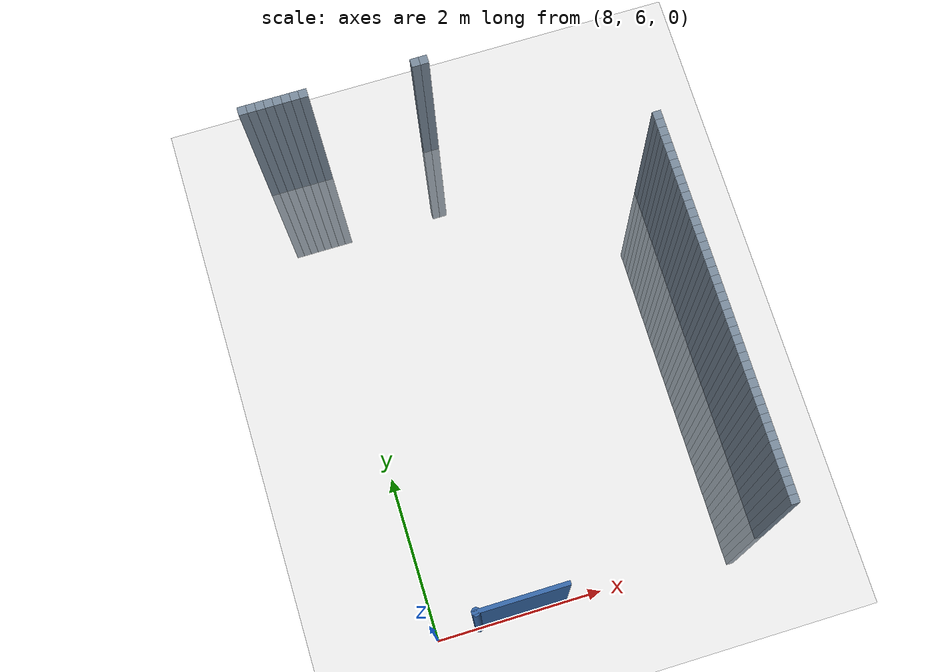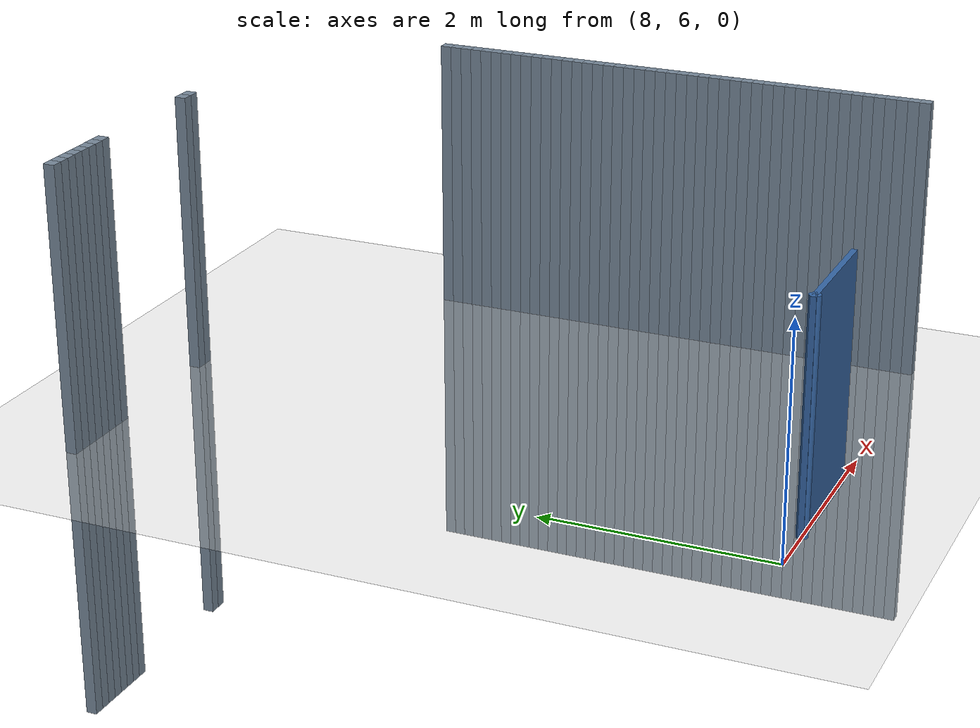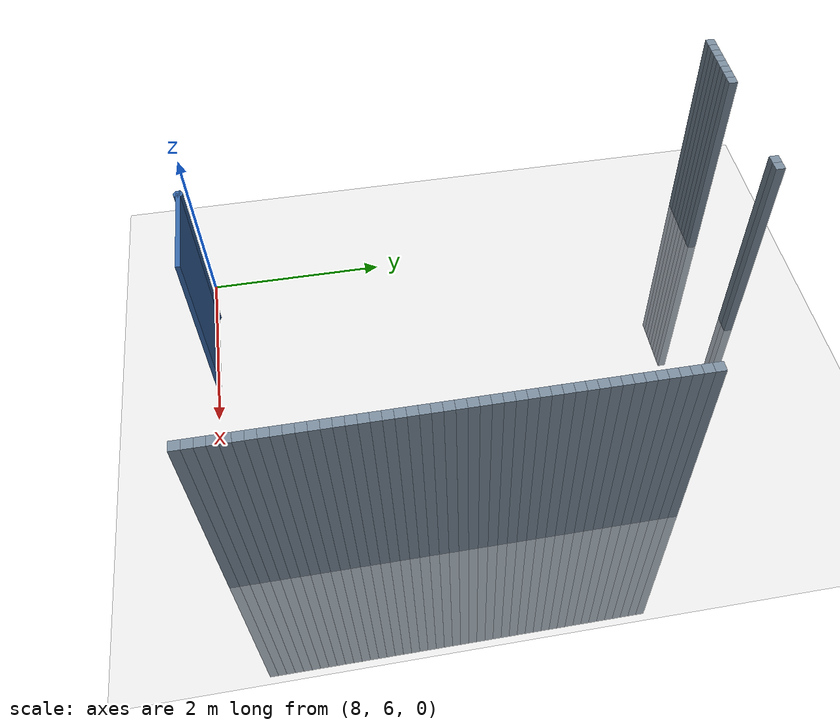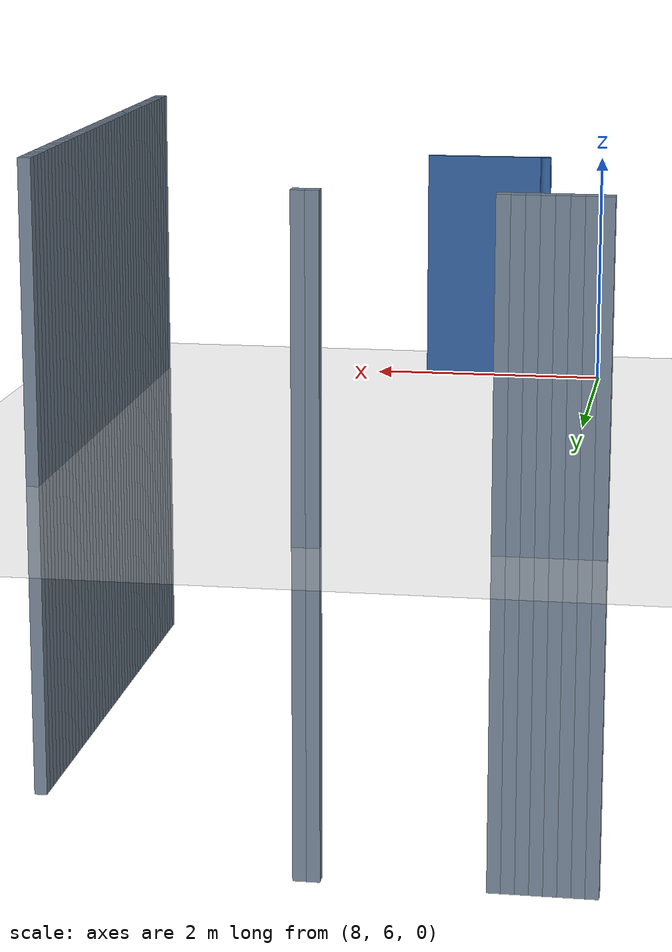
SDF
<sdf version="1.6">
 <world name="default">
  <model name="ground_plane">
   <static>1</static>
   <link name="link">
    <collision name="collision">
     <geometry><plane><normal>0 0 1</normal><size>100 100</size></plane></geometry>
     <surface><friction><ode><mu>100</mu><mu2>50</mu2></ode></friction></surface>
    </collision>
    <visual name="visual">
     <cast_shadows>0</cast_shadows>
     <geometry><plane><normal>0 0 1</normal><size>100 100</size></plane></geometry>
     <material>
      <script><uri>file://media/materials/scripts/gazebo.material</uri><name>Gazebo/Grey</name></script>
     </material>
    </visual>
   </link>
  </model>
  <model name="unit_cylinder_424">
   <static>1</static>
   <pose>7.6 12 0 0 -0 0</pose>
   <link name="link">
    <inertial>
     <mass>1</mass>
     <inertia><ixx>0.145833</ixx><ixy>0</ixy><ixz>0</ixz><iyy>0.145833</iyy><iyz>0</iyz><izz>0.125</izz></inertia>
    </inertial>
    <collision name="collision"><geometry><box><size>0.1 0.1 5</size></box></geometry></collision>
    <visual name="visual">
     <geometry><box><size>0.1 0.1 5</size></box></geometry>
     <material><ambient>0.466667 0.533333 0.6 1</ambient><diffuse>0.466667 0.533333 0.6 1</diffuse></material>
     <material>
      <script><name>Gazebo/Grey</name><uri>file://media/materials/scripts/gazebo.material</uri></script>
     </material>
    </visual>
   </link>
  </model>
  <model name="unit_cylinder_428">
   <static>1</static>
   <pose>7.7 12 0 0 -0 0</pose>
   <link name="link">
    <inertial>
     <mass>1</mass>
     <inertia><ixx>0.145833</ixx><ixy>0</ixy><ixz>0</ixz><iyy>0.145833</iyy><iyz>0</iyz><izz>0.125</izz></inertia>
    </inertial>
    <collision name="collision"><geometry><box><size>0.1 0.1 5</size></box></geometry></collision>
    <visual name="visual">
     <geometry><box><size>0.1 0.1 5</size></box></geometry>
     <material><ambient>0.466667 0.533333 0.6 1</ambient><diffuse>0.466667 0.533333 0.6 1</diffuse></material>
     <material>
      <script><name>Gazebo/Grey</name><uri>file://media/materials/scripts/gazebo.material</uri></script>
     </material>
    </visual>
   </link>
  </model>
  <model name="unit_cylinder_432">
   <static>1</static>
   <pose>7.8 12 0 0 -0 0</pose>
   <link name="link">
    <inertial>
     <mass>1</mass>
     <inertia><ixx>0.145833</ixx><ixy>0</ixy><ixz>0</ixz><iyy>0.145833</iyy><iyz>0</iyz><izz>0.125</izz></inertia>
    </inertial>
    <collision name="collision"><geometry><box><size>0.1 0.1 5</size></box></geometry></collision>
    <visual name="visual">
     <geometry><box><size>0.1 0.1 5</size></box></geometry>
     <material><ambient>0.466667 0.533333 0.6 1</ambient><diffuse>0.466667 0.533333 0.6 1</diffuse></material>
     <material>
      <script><name>Gazebo/Grey</name><uri>file://media/materials/scripts/gazebo.material</uri></script>
     </material>
    </visual>
   </link>
  </model>
  <model name="unit_cylinder_436">
   <static>1</static>
   <pose>7.9 12 0 0 -0 0</pose>
   <link name="link">
    <inertial>
     <mass>1</mass>
     <inertia><ixx>0.145833</ixx><ixy>0</ixy><ixz>0</ixz><iyy>0.145833</iyy><iyz>0</iyz><izz>0.125</izz></inertia>
    </inertial>
    <collision name="collision"><geometry><box><size>0.1 0.1 5</size></box></geometry></collision>
    <visual name="visual">
     <geometry><box><size>0.1 0.1 5</size></box></geometry>
     <material><ambient>0.466667 0.533333 0.6 1</ambient><diffuse>0.466667 0.533333 0.6 1</diffuse></material>
     <material>
      <script><name>Gazebo/Grey</name><uri>file://media/materials/scripts/gazebo.material</uri></script>
     </material>
    </visual>
   </link>
  </model>
  <model name="unit_cylinder_440">
   <static>1</static>
   <pose>8 12 0 0 -0 0</pose>
   <link name="link">
    <inertial>
     <mass>1</mass>
     <inertia><ixx>0.145833</ixx><ixy>0</ixy><ixz>0</ixz><iyy>0.145833</iyy><iyz>0</iyz><izz>0.125</izz></inertia>
    </inertial>
    <collision name="collision"><geometry><box><size>0.1 0.1 5</size></box></geometry></collision>
    <visual name="visual">
     <geometry><box><size>0.1 0.1 5</size></box></geometry>
     <material><ambient>0.466667 0.533333 0.6 1</ambient><diffuse>0.466667 0.533333 0.6 1</diffuse></material>
     <material>
      <script><name>Gazebo/Grey</name><uri>file://media/materials/scripts/gazebo.material</uri></script>
     </material>
    </visual>
   </link>
  </model>
  <model name="unit_cylinder_444">
   <static>1</static>
   <pose>8.1 12 0 0 -0 0</pose>
   <link name="link">
    <inertial>
     <mass>1</mass>
     <inertia><ixx>0.145833</ixx><ixy>0</ixy><ixz>0</ixz><iyy>0.145833</iyy><iyz>0</iyz><izz>0.125</izz></inertia>
    </inertial>
    <collision name="collision"><geometry><box><size>0.1 0.1 5</size></box></geometry></collision>
    <visual name="visual">
     <geometry><box><size>0.1 0.1 5</size></box></geometry>
     <material><ambient>0.466667 0.533333 0.6 1</ambient><diffuse>0.466667 0.533333 0.6 1</diffuse></material>
     <material>
      <script><name>Gazebo/Grey</name><uri>file://media/materials/scripts/gazebo.material</uri></script>
     </material>
    </visual>
   </link>
  </model>
  <model name="unit_cylinder_448">
   <static>1</static>
   <pose>8.2 12 0 0 -0 0</pose>
   <link name="link">
    <inertial>
     <mass>1</mass>
     <inertia><ixx>0.145833</ixx><ixy>0</ixy><ixz>0</ixz><iyy>0.145833</iyy><iyz>0</iyz><izz>0.125</izz></inertia>
    </inertial>
    <collision name="collision"><geometry><box><size>0.1 0.1 5</size></box></geometry></collision>
    <visual name="visual">
     <geometry><box><size>0.1 0.1 5</size></box></geometry>
     <material><ambient>0.466667 0.533333 0.6 1</ambient><diffuse>0.466667 0.533333 0.6 1</diffuse></material>
     <material>
      <script><name>Gazebo/Grey</name><uri>file://media/materials/scripts/gazebo.material</uri></script>
     </material>
    </visual>
   </link>
  </model>
  <model name="unit_cylinder_452">
   <static>1</static>
   <pose>8.3 12 0 0 -0 0</pose>
   <link name="link">
    <inertial>
     <mass>1</mass>
     <inertia><ixx>0.145833</ixx><ixy>0</ixy><ixz>0</ixz><iyy>0.145833</iyy><iyz>0</iyz><izz>0.125</izz></inertia>
    </inertial>
    <collision name="collision"><geometry><box><size>0.1 0.1 5</size></box></geometry></collision>
    <visual name="visual">
     <geometry><box><size>0.1 0.1 5</size></box></geometry>
     <material><ambient>0.466667 0.533333 0.6 1</ambient><diffuse>0.466667 0.533333 0.6 1</diffuse></material>
     <material>
      <script><name>Gazebo/Grey</name><uri>file://media/materials/scripts/gazebo.material</uri></script>
     </material>
    </visual>
   </link>
  </model>
  <model name="unit_cylinder_504">
   <static>1</static>
   <pose>9.6 12 0 0 -0 0</pose>
   <link name="link">
    <inertial>
     <mass>1</mass>
     <inertia><ixx>0.145833</ixx><ixy>0</ixy><ixz>0</ixz><iyy>0.145833</iyy><iyz>0</iyz><izz>0.125</izz></inertia>
    </inertial>
    <collision name="collision"><geometry><box><size>0.1 0.1 5</size></box></geometry></collision>
    <visual name="visual">
     <geometry><box><size>0.1 0.1 5</size></box></geometry>
     <material><ambient>0.466667 0.533333 0.6 1</ambient><diffuse>0.466667 0.533333 0.6 1</diffuse></material>
     <material>
      <script><name>Gazebo/Grey</name><uri>file://media/materials/scripts/gazebo.material</uri></script>
     </material>
    </visual>
   </link>
  </model>
  <model name="unit_cylinder_508">
   <static>1</static>
   <pose>9.7 12 0 0 -0 0</pose>
   <link name="link">
    <inertial>
     <mass>1</mass>
     <inertia><ixx>0.145833</ixx><ixy>0</ixy><ixz>0</ixz><iyy>0.145833</iyy><iyz>0</iyz><izz>0.125</izz></inertia>
    </inertial>
    <collision name="collision"><geometry><box><size>0.1 0.1 5</size></box></geometry></collision>
    <visual name="visual">
     <geometry><box><size>0.1 0.1 5</size></box></geometry>
     <material><ambient>0.466667 0.533333 0.6 1</ambient><diffuse>0.466667 0.533333 0.6 1</diffuse></material>
     <material>
      <script><name>Gazebo/Grey</name><uri>file://media/materials/scripts/gazebo.material</uri></script>
     </material>
    </visual>
   </link>
  </model>
  <model name="unit_cylinder_659">
   <static>1</static>
   <pose>12 6.1 0 0 -0 0</pose>
   <link name="link">
    <inertial>
     <mass>1</mass>
     <inertia><ixx>0.145833</ixx><ixy>0</ixy><ixz>0</ixz><iyy>0.145833</iyy><iyz>0</iyz><izz>0.125</izz></inertia>
    </inertial>
    <collision name="collision"><geometry><box><size>0.1 0.1 5</size></box></geometry></collision>
    <visual name="visual">
     <geometry><box><size>0.1 0.1 5</size></box></geometry>
     <material><ambient>0.466667 0.533333 0.6 1</ambient><diffuse>0.466667 0.533333 0.6 1</diffuse></material>
     <material>
      <script><name>Gazebo/Grey</name><uri>file://media/materials/scripts/gazebo.material</uri></script>
     </material>
    </visual>
   </link>
  </model>
  <model name="unit_cylinder_660">
   <static>1</static>
   <pose>12 6.2 0 0 -0 0</pose>
   <link name="link">
    <inertial>
     <mass>1</mass>
     <inertia><ixx>0.145833</ixx><ixy>0</ixy><ixz>0</ixz><iyy>0.145833</iyy><iyz>0</iyz><izz>0.125</izz></inertia>
    </inertial>
    <collision name="collision"><geometry><box><size>0.1 0.1 5</size></box></geometry></collision>
    <visual name="visual">
     <geometry><box><size>0.1 0.1 5</size></box></geometry>
     <material><ambient>0.466667 0.533333 0.6 1</ambient><diffuse>0.466667 0.533333 0.6 1</diffuse></material>
     <material>
      <script><name>Gazebo/Grey</name><uri>file://media/materials/scripts/gazebo.material</uri></script>
     </material>
    </visual>
   </link>
  </model>
  <model name="unit_cylinder_661">
   <static>1</static>
   <pose>12 6.3 0 0 -0 0</pose>
   <link name="link">
    <inertial>
     <mass>1</mass>
     <inertia><ixx>0.145833</ixx><ixy>0</ixy><ixz>0</ixz><iyy>0.145833</iyy><iyz>0</iyz><izz>0.125</izz></inertia>
    </inertial>
    <collision name="collision"><geometry><box><size>0.1 0.1 5</size></box></geometry></collision>
    <visual name="visual">
     <geometry><box><size>0.1 0.1 5</size></box></geometry>
     <material><ambient>0.466667 0.533333 0.6 1</ambient><diffuse>0.466667 0.533333 0.6 1</diffuse></material>
     <material>
      <script><name>Gazebo/Grey</name><uri>file://media/materials/scripts/gazebo.material</uri></script>
     </material>
    </visual>
   </link>
  </model>
  <model name="unit_cylinder_662">
   <static>1</static>
   <pose>12 6.4 0 0 -0 0</pose>
   <link name="link">
    <inertial>
     <mass>1</mass>
     <inertia><ixx>0.145833</ixx><ixy>0</ixy><ixz>0</ixz><iyy>0.145833</iyy><iyz>0</iyz><izz>0.125</izz></inertia>
    </inertial>
    <collision name="collision"><geometry><box><size>0.1 0.1 5</size></box></geometry></collision>
    <visual name="visual">
     <geometry><box><size>0.1 0.1 5</size></box></geometry>
     <material><ambient>0.466667 0.533333 0.6 1</ambient><diffuse>0.466667 0.533333 0.6 1</diffuse></material>
     <material>
      <script><name>Gazebo/Grey</name><uri>file://media/materials/scripts/gazebo.material</uri></script>
     </material>
    </visual>
   </link>
  </model>
  <model name="unit_cylinder_663">
   <static>1</static>
   <pose>12 6.5 0 0 -0 0</pose>
   <link name="link">
    <inertial>
     <mass>1</mass>
     <inertia><ixx>0.145833</ixx><ixy>0</ixy><ixz>0</ixz><iyy>0.145833</iyy><iyz>0</iyz><izz>0.125</izz></inertia>
    </inertial>
    <collision name="collision"><geometry><box><size>0.1 0.1 5</size></box></geometry></collision>
    <visual name="visual">
     <geometry><box><size>0.1 0.1 5</size></box></geometry>
     <material><ambient>0.466667 0.533333 0.6 1</ambient><diffuse>0.466667 0.533333 0.6 1</diffuse></material>
     <material>
      <script><name>Gazebo/Grey</name><uri>file://media/materials/scripts/gazebo.material</uri></script>
     </material>
    </visual>
   </link>
  </model>
  <model name="unit_cylinder_664">
   <static>1</static>
   <pose>12 6.6 0 0 -0 0</pose>
   <link name="link">
    <inertial>
     <mass>1</mass>
     <inertia><ixx>0.145833</ixx><ixy>0</ixy><ixz>0</ixz><iyy>0.145833</iyy><iyz>0</iyz><izz>0.125</izz></inertia>
    </inertial>
    <collision name="collision"><geometry><box><size>0.1 0.1 5</size></box></geometry></collision>
    <visual name="visual">
     <geometry><box><size>0.1 0.1 5</size></box></geometry>
     <material><ambient>0.466667 0.533333 0.6 1</ambient><diffuse>0.466667 0.533333 0.6 1</diffuse></material>
     <material>
      <script><name>Gazebo/Grey</name><uri>file://media/materials/scripts/gazebo.material</uri></script>
     </material>
    </visual>
   </link>
  </model>
  <model name="unit_cylinder_665">
   <static>1</static>
   <pose>12 6.7 0 0 -0 0</pose>
   <link name="link">
    <inertial>
     <mass>1</mass>
     <inertia><ixx>0.145833</ixx><ixy>0</ixy><ixz>0</ixz><iyy>0.145833</iyy><iyz>0</iyz><izz>0.125</izz></inertia>
    </inertial>
    <collision name="collision"><geometry><box><size>0.1 0.1 5</size></box></geometry></collision>
    <visual name="visual">
     <geometry><box><size>0.1 0.1 5</size></box></geometry>
     <material><ambient>0.466667 0.533333 0.6 1</ambient><diffuse>0.466667 0.533333 0.6 1</diffuse></material>
     <material>
      <script><name>Gazebo/Grey</name><uri>file://media/materials/scripts/gazebo.material</uri></script>
     </material>
    </visual>
   </link>
  </model>
  <model name="unit_cylinder_666">
   <static>1</static>
   <pose>12 6.8 0 0 -0 0</pose>
   <link name="link">
    <inertial>
     <mass>1</mass>
     <inertia><ixx>0.145833</ixx><ixy>0</ixy><ixz>0</ixz><iyy>0.145833</iyy><iyz>0</iyz><izz>0.125</izz></inertia>
    </inertial>
    <collision name="collision"><geometry><box><size>0.1 0.1 5</size></box></geometry></collision>
    <visual name="visual">
     <geometry><box><size>0.1 0.1 5</size></box></geometry>
     <material><ambient>0.466667 0.533333 0.6 1</ambient><diffuse>0.466667 0.533333 0.6 1</diffuse></material>
     <material>
      <script><name>Gazebo/Grey</name><uri>file://media/materials/scripts/gazebo.material</uri></script>
     </material>
    </visual>
   </link>
  </model>
  <model name="unit_cylinder_667">
   <static>1</static>
   <pose>12 6.9 0 0 -0 0</pose>
   <link name="link">
    <inertial>
     <mass>1</mass>
     <inertia><ixx>0.145833</ixx><ixy>0</ixy><ixz>0</ixz><iyy>0.145833</iyy><iyz>0</iyz><izz>0.125</izz></inertia>
    </inertial>
    <collision name="collision"><geometry><box><size>0.1 0.1 5</size></box></geometry></collision>
    <visual name="visual">
     <geometry><box><size>0.1 0.1 5</size></box></geometry>
     <material><ambient>0.466667 0.533333 0.6 1</ambient><diffuse>0.466667 0.533333 0.6 1</diffuse></material>
     <material>
      <script><name>Gazebo/Grey</name><uri>file://media/materials/scripts/gazebo.material</uri></script>
     </material>
    </visual>
   </link>
  </model>
  <model name="unit_cylinder_668">
   <static>1</static>
   <pose>12 7 0 0 -0 0</pose>
   <link name="link">
    <inertial>
     <mass>1</mass>
     <inertia><ixx>0.145833</ixx><ixy>0</ixy><ixz>0</ixz><iyy>0.145833</iyy><iyz>0</iyz><izz>0.125</izz></inertia>
    </inertial>
    <collision name="collision"><geometry><box><size>0.1 0.1 5</size></box></geometry></collision>
    <visual name="visual">
     <geometry><box><size>0.1 0.1 5</size></box></geometry>
     <material><ambient>0.466667 0.533333 0.6 1</ambient><diffuse>0.466667 0.533333 0.6 1</diffuse></material>
     <material>
      <script><name>Gazebo/Grey</name><uri>file://media/materials/scripts/gazebo.material</uri></script>
     </material>
    </visual>
   </link>
  </model>
  <model name="unit_cylinder_669">
   <static>1</static>
   <pose>12 7.1 0 0 -0 0</pose>
   <link name="link">
    <inertial>
     <mass>1</mass>
     <inertia><ixx>0.145833</ixx><ixy>0</ixy><ixz>0</ixz><iyy>0.145833</iyy><iyz>0</iyz><izz>0.125</izz></inertia>
    </inertial>
    <collision name="collision"><geometry><box><size>0.1 0.1 5</size></box></geometry></collision>
    <visual name="visual">
     <geometry><box><size>0.1 0.1 5</size></box></geometry>
     <material><ambient>0.466667 0.533333 0.6 1</ambient><diffuse>0.466667 0.533333 0.6 1</diffuse></material>
     <material>
      <script><name>Gazebo/Grey</name><uri>file://media/materials/scripts/gazebo.material</uri></script>
     </material>
    </visual>
   </link>
  </model>
  <model name="unit_cylinder_670">
   <static>1</static>
   <pose>12 7.2 0 0 -0 0</pose>
   <link name="link">
    <inertial>
     <mass>1</mass>
     <inertia><ixx>0.145833</ixx><ixy>0</ixy><ixz>0</ixz><iyy>0.145833</iyy><iyz>0</iyz><izz>0.125</izz></inertia>
    </inertial>
    <collision name="collision"><geometry><box><size>0.1 0.1 5</size></box></geometry></collision>
    <visual name="visual">
     <geometry><box><size>0.1 0.1 5</size></box></geometry>
     <material><ambient>0.466667 0.533333 0.6 1</ambient><diffuse>0.466667 0.533333 0.6 1</diffuse></material>
     <material>
      <script><name>Gazebo/Grey</name><uri>file://media/materials/scripts/gazebo.material</uri></script>
     </material>
    </visual>
   </link>
  </model>
  <model name="unit_cylinder_671">
   <static>1</static>
   <pose>12 7.3 0 0 -0 0</pose>
   <link name="link">
    <inertial>
     <mass>1</mass>
     <inertia><ixx>0.145833</ixx><ixy>0</ixy><ixz>0</ixz><iyy>0.145833</iyy><iyz>0</iyz><izz>0.125</izz></inertia>
    </inertial>
    <collision name="collision"><geometry><box><size>0.1 0.1 5</size></box></geometry></collision>
    <visual name="visual">
     <geometry><box><size>0.1 0.1 5</size></box></geometry>
     <material><ambient>0.466667 0.533333 0.6 1</ambient><diffuse>0.466667 0.533333 0.6 1</diffuse></material>
     <material>
      <script><name>Gazebo/Grey</name><uri>file://media/materials/scripts/gazebo.material</uri></script>
     </material>
    </visual>
   </link>
  </model>
  <model name="unit_cylinder_672">
   <static>1</static>
   <pose>12 7.4 0 0 -0 0</pose>
   <link name="link">
    <inertial>
     <mass>1</mass>
     <inertia><ixx>0.145833</ixx><ixy>0</ixy><ixz>0</ixz><iyy>0.145833</iyy><iyz>0</iyz><izz>0.125</izz></inertia>
    </inertial>
    <collision name="collision"><geometry><box><size>0.1 0.1 5</size></box></geometry></collision>
    <visual name="visual">
     <geometry><box><size>0.1 0.1 5</size></box></geometry>
     <material><ambient>0.466667 0.533333 0.6 1</ambient><diffuse>0.466667 0.533333 0.6 1</diffuse></material>
     <material>
      <script><name>Gazebo/Grey</name><uri>file://media/materials/scripts/gazebo.material</uri></script>
     </material>
    </visual>
   </link>
  </model>
  <model name="unit_cylinder_673">
   <static>1</static>
   <pose>12 7.5 0 0 -0 0</pose>
   <link name="link">
    <inertial>
     <mass>1</mass>
     <inertia><ixx>0.145833</ixx><ixy>0</ixy><ixz>0</ixz><iyy>0.145833</iyy><iyz>0</iyz><izz>0.125</izz></inertia>
    </inertial>
    <collision name="collision"><geometry><box><size>0.1 0.1 5</size></box></geometry></collision>
    <visual name="visual">
     <geometry><box><size>0.1 0.1 5</size></box></geometry>
     <material><ambient>0.466667 0.533333 0.6 1</ambient><diffuse>0.466667 0.533333 0.6 1</diffuse></material>
     <material>
      <script><name>Gazebo/Grey</name><uri>file://media/materials/scripts/gazebo.material</uri></script>
     </material>
    </visual>
   </link>
  </model>
  <model name="unit_cylinder_674">
   <static>1</static>
   <pose>12 7.6 0 0 -0 0</pose>
   <link name="link">
    <inertial>
     <mass>1</mass>
     <inertia><ixx>0.145833</ixx><ixy>0</ixy><ixz>0</ixz><iyy>0.145833</iyy><iyz>0</iyz><izz>0.125</izz></inertia>
    </inertial>
    <collision name="collision"><geometry><box><size>0.1 0.1 5</size></box></geometry></collision>
    <visual name="visual">
     <geometry><box><size>0.1 0.1 5</size></box></geometry>
     <material><ambient>0.466667 0.533333 0.6 1</ambient><diffuse>0.466667 0.533333 0.6 1</diffuse></material>
     <material>
      <script><name>Gazebo/Grey</name><uri>file://media/materials/scripts/gazebo.material</uri></script>
     </material>
    </visual>
   </link>
  </model>
  <model name="unit_cylinder_675">
   <static>1</static>
   <pose>12 7.7 0 0 -0 0</pose>
   <link name="link">
    <inertial>
     <mass>1</mass>
     <inertia><ixx>0.145833</ixx><ixy>0</ixy><ixz>0</ixz><iyy>0.145833</iyy><iyz>0</iyz><izz>0.125</izz></inertia>
    </inertial>
    <collision name="collision"><geometry><box><size>0.1 0.1 5</size></box></geometry></collision>
    <visual name="visual">
     <geometry><box><size>0.1 0.1 5</size></box></geometry>
     <material><ambient>0.466667 0.533333 0.6 1</ambient><diffuse>0.466667 0.533333 0.6 1</diffuse></material>
     <material>
      <script><name>Gazebo/Grey</name><uri>file://media/materials/scripts/gazebo.material</uri></script>
     </material>
    </visual>
   </link>
  </model>
  <model name="unit_cylinder_676">
   <static>1</static>
   <pose>12 7.8 0 0 -0 0</pose>
   <link name="link">
    <inertial>
     <mass>1</mass>
     <inertia><ixx>0.145833</ixx><ixy>0</ixy><ixz>0</ixz><iyy>0.145833</iyy><iyz>0</iyz><izz>0.125</izz></inertia>
    </inertial>
    <collision name="collision"><geometry><box><size>0.1 0.1 5</size></box></geometry></collision>
    <visual name="visual">
     <geometry><box><size>0.1 0.1 5</size></box></geometry>
     <material><ambient>0.466667 0.533333 0.6 1</ambient><diffuse>0.466667 0.533333 0.6 1</diffuse></material>
     <material>
      <script><name>Gazebo/Grey</name><uri>file://media/materials/scripts/gazebo.material</uri></script>
     </material>
    </visual>
   </link>
  </model>
  <model name="unit_cylinder_677">
   <static>1</static>
   <pose>12 7.9 0 0 -0 0</pose>
   <link name="link">
    <inertial>
     <mass>1</mass>
     <inertia><ixx>0.145833</ixx><ixy>0</ixy><ixz>0</ixz><iyy>0.145833</iyy><iyz>0</iyz><izz>0.125</izz></inertia>
    </inertial>
    <collision name="collision"><geometry><box><size>0.1 0.1 5</size></box></geometry></collision>
    <visual name="visual">
     <geometry><box><size>0.1 0.1 5</size></box></geometry>
     <material><ambient>0.466667 0.533333 0.6 1</ambient><diffuse>0.466667 0.533333 0.6 1</diffuse></material>
     <material>
      <script><name>Gazebo/Grey</name><uri>file://media/materials/scripts/gazebo.material</uri></script>
     </material>
    </visual>
   </link>
  </model>
  <model name="unit_cylinder_678">
   <static>1</static>
   <pose>12 8 0 0 -0 0</pose>
   <link name="link">
    <inertial>
     <mass>1</mass>
     <inertia><ixx>0.145833</ixx><ixy>0</ixy><ixz>0</ixz><iyy>0.145833</iyy><iyz>0</iyz><izz>0.125</izz></inertia>
    </inertial>
    <collision name="collision"><geometry><box><size>0.1 0.1 5</size></box></geometry></collision>
    <visual name="visual">
     <geometry><box><size>0.1 0.1 5</size></box></geometry>
     <material><ambient>0.466667 0.533333 0.6 1</ambient><diffuse>0.466667 0.533333 0.6 1</diffuse></material>
     <material>
      <script><name>Gazebo/Grey</name><uri>file://media/materials/scripts/gazebo.material</uri></script>
     </material>
    </visual>
   </link>
  </model>
  <model name="unit_cylinder_679">
   <static>1</static>
   <pose>12 8.1 0 0 -0 0</pose>
   <link name="link">
    <inertial>
     <mass>1</mass>
     <inertia><ixx>0.145833</ixx><ixy>0</ixy><ixz>0</ixz><iyy>0.145833</iyy><iyz>0</iyz><izz>0.125</izz></inertia>
    </inertial>
    <collision name="collision"><geometry><box><size>0.1 0.1 5</size></box></geometry></collision>
    <visual name="visual">
     <geometry><box><size>0.1 0.1 5</size></box></geometry>
     <material><ambient>0.466667 0.533333 0.6 1</ambient><diffuse>0.466667 0.533333 0.6 1</diffuse></material>
     <material>
      <script><name>Gazebo/Grey</name><uri>file://media/materials/scripts/gazebo.material</uri></script>
     </material>
    </visual>
   </link>
  </model>
  <model name="unit_cylinder_680">
   <static>1</static>
   <pose>12 8.2 0 0 -0 0</pose>
   <link name="link">
    <inertial>
     <mass>1</mass>
     <inertia><ixx>0.145833</ixx><ixy>0</ixy><ixz>0</ixz><iyy>0.145833</iyy><iyz>0</iyz><izz>0.125</izz></inertia>
    </inertial>
    <collision name="collision"><geometry><box><size>0.1 0.1 5</size></box></geometry></collision>
    <visual name="visual">
     <geometry><box><size>0.1 0.1 5</size></box></geometry>
     <material><ambient>0.466667 0.533333 0.6 1</ambient><diffuse>0.466667 0.533333 0.6 1</diffuse></material>
     <material>
      <script><name>Gazebo/Grey</name><uri>file://media/materials/scripts/gazebo.material</uri></script>
     </material>
    </visual>
   </link>
  </model>
  <model name="unit_cylinder_681">
   <static>1</static>
   <pose>12 8.3 0 0 -0 0</pose>
   <link name="link">
    <inertial>
     <mass>1</mass>
     <inertia><ixx>0.145833</ixx><ixy>0</ixy><ixz>0</ixz><iyy>0.145833</iyy><iyz>0</iyz><izz>0.125</izz></inertia>
    </inertial>
    <collision name="collision"><geometry><box><size>0.1 0.1 5</size></box></geometry></collision>
    <visual name="visual">
     <geometry><box><size>0.1 0.1 5</size></box></geometry>
     <material><ambient>0.466667 0.533333 0.6 1</ambient><diffuse>0.466667 0.533333 0.6 1</diffuse></material>
     <material>
      <script><name>Gazebo/Grey</name><uri>file://media/materials/scripts/gazebo.material</uri></script>
     </material>
    </visual>
   </link>
  </model>
  <model name="unit_cylinder_682">
   <static>1</static>
   <pose>12 8.4 0 0 -0 0</pose>
   <link name="link">
    <inertial>
     <mass>1</mass>
     <inertia><ixx>0.145833</ixx><ixy>0</ixy><ixz>0</ixz><iyy>0.145833</iyy><iyz>0</iyz><izz>0.125</izz></inertia>
    </inertial>
    <collision name="collision"><geometry><box><size>0.1 0.1 5</size></box></geometry></collision>
    <visual name="visual">
     <geometry><box><size>0.1 0.1 5</size></box></geometry>
     <material><ambient>0.466667 0.533333 0.6 1</ambient><diffuse>0.466667 0.533333 0.6 1</diffuse></material>
     <material>
      <script><name>Gazebo/Grey</name><uri>file://media/materials/scripts/gazebo.material</uri></script>
     </material>
    </visual>
   </link>
  </model>
  <model name="unit_cylinder_683">
   <static>1</static>
   <pose>12 8.5 0 0 -0 0</pose>
   <link name="link">
    <inertial>
     <mass>1</mass>
     <inertia><ixx>0.145833</ixx><ixy>0</ixy><ixz>0</ixz><iyy>0.145833</iyy><iyz>0</iyz><izz>0.125</izz></inertia>
    </inertial>
    <collision name="collision"><geometry><box><size>0.1 0.1 5</size></box></geometry></collision>
    <visual name="visual">
     <geometry><box><size>0.1 0.1 5</size></box></geometry>
     <material><ambient>0.466667 0.533333 0.6 1</ambient><diffuse>0.466667 0.533333 0.6 1</diffuse></material>
     <material>
      <script><name>Gazebo/Grey</name><uri>file://media/materials/scripts/gazebo.material</uri></script>
     </material>
    </visual>
   </link>
  </model>
  <model name="unit_cylinder_684">
   <static>1</static>
   <pose>12 8.6 0 0 -0 0</pose>
   <link name="link">
    <inertial>
     <mass>1</mass>
     <inertia><ixx>0.145833</ixx><ixy>0</ixy><ixz>0</ixz><iyy>0.145833</iyy><iyz>0</iyz><izz>0.125</izz></inertia>
    </inertial>
    <collision name="collision"><geometry><box><size>0.1 0.1 5</size></box></geometry></collision>
    <visual name="visual">
     <geometry><box><size>0.1 0.1 5</size></box></geometry>
     <material><ambient>0.466667 0.533333 0.6 1</ambient><diffuse>0.466667 0.533333 0.6 1</diffuse></material>
     <material>
      <script><name>Gazebo/Grey</name><uri>file://media/materials/scripts/gazebo.material</uri></script>
     </material>
    </visual>
   </link>
  </model>
  <model name="unit_cylinder_685">
   <static>1</static>
   <pose>12 8.7 0 0 -0 0</pose>
   <link name="link">
    <inertial>
     <mass>1</mass>
     <inertia><ixx>0.145833</ixx><ixy>0</ixy><ixz>0</ixz><iyy>0.145833</iyy><iyz>0</iyz><izz>0.125</izz></inertia>
    </inertial>
    <collision name="collision"><geometry><box><size>0.1 0.1 5</size></box></geometry></collision>
    <visual name="visual">
     <geometry><box><size>0.1 0.1 5</size></box></geometry>
     <material><ambient>0.466667 0.533333 0.6 1</ambient><diffuse>0.466667 0.533333 0.6 1</diffuse></material>
     <material>
      <script><name>Gazebo/Grey</name><uri>file://media/materials/scripts/gazebo.material</uri></script>
     </material>
    </visual>
   </link>
  </model>
  <model name="unit_cylinder_686">
   <static>1</static>
   <pose>12 8.8 0 0 -0 0</pose>
   <link name="link">
    <inertial>
     <mass>1</mass>
     <inertia><ixx>0.145833</ixx><ixy>0</ixy><ixz>0</ixz><iyy>0.145833</iyy><iyz>0</iyz><izz>0.125</izz></inertia>
    </inertial>
    <collision name="collision"><geometry><box><size>0.1 0.1 5</size></box></geometry></collision>
    <visual name="visual">
     <geometry><box><size>0.1 0.1 5</size></box></geometry>
     <material><ambient>0.466667 0.533333 0.6 1</ambient><diffuse>0.466667 0.533333 0.6 1</diffuse></material>
     <material>
      <script><name>Gazebo/Grey</name><uri>file://media/materials/scripts/gazebo.material</uri></script>
     </material>
    </visual>
   </link>
  </model>
  <model name="unit_cylinder_687">
   <static>1</static>
   <pose>12 8.9 0 0 -0 0</pose>
   <link name="link">
    <inertial>
     <mass>1</mass>
     <inertia><ixx>0.145833</ixx><ixy>0</ixy><ixz>0</ixz><iyy>0.145833</iyy><iyz>0</iyz><izz>0.125</izz></inertia>
    </inertial>
    <collision name="collision"><geometry><box><size>0.1 0.1 5</size></box></geometry></collision>
    <visual name="visual">
     <geometry><box><size>0.1 0.1 5</size></box></geometry>
     <material><ambient>0.466667 0.533333 0.6 1</ambient><diffuse>0.466667 0.533333 0.6 1</diffuse></material>
     <material>
      <script><name>Gazebo/Grey</name><uri>file://media/materials/scripts/gazebo.material</uri></script>
     </material>
    </visual>
   </link>
  </model>
  <model name="unit_cylinder_688">
   <static>1</static>
   <pose>12 9 0 0 -0 0</pose>
   <link name="link">
    <inertial>
     <mass>1</mass>
     <inertia><ixx>0.145833</ixx><ixy>0</ixy><ixz>0</ixz><iyy>0.145833</iyy><iyz>0</iyz><izz>0.125</izz></inertia>
    </inertial>
    <collision name="collision"><geometry><box><size>0.1 0.1 5</size></box></geometry></collision>
    <visual name="visual">
     <geometry><box><size>0.1 0.1 5</size></box></geometry>
     <material><ambient>0.466667 0.533333 0.6 1</ambient><diffuse>0.466667 0.533333 0.6 1</diffuse></material>
     <material>
      <script><name>Gazebo/Grey</name><uri>file://media/materials/scripts/gazebo.material</uri></script>
     </material>
    </visual>
   </link>
  </model>
  <model name="unit_cylinder_689">
   <static>1</static>
   <pose>12 9.1 0 0 -0 0</pose>
   <link name="link">
    <inertial>
     <mass>1</mass>
     <inertia><ixx>0.145833</ixx><ixy>0</ixy><ixz>0</ixz><iyy>0.145833</iyy><iyz>0</iyz><izz>0.125</izz></inertia>
    </inertial>
    <collision name="collision"><geometry><box><size>0.1 0.1 5</size></box></geometry></collision>
    <visual name="visual">
     <geometry><box><size>0.1 0.1 5</size></box></geometry>
     <material><ambient>0.466667 0.533333 0.6 1</ambient><diffuse>0.466667 0.533333 0.6 1</diffuse></material>
     <material>
      <script><name>Gazebo/Grey</name><uri>file://media/materials/scripts/gazebo.material</uri></script>
     </material>
    </visual>
   </link>
  </model>
  <model name="unit_cylinder_690">
   <static>1</static>
   <pose>12 9.2 0 0 -0 0</pose>
   <link name="link">
    <inertial>
     <mass>1</mass>
     <inertia><ixx>0.145833</ixx><ixy>0</ixy><ixz>0</ixz><iyy>0.145833</iyy><iyz>0</iyz><izz>0.125</izz></inertia>
    </inertial>
    <collision name="collision"><geometry><box><size>0.1 0.1 5</size></box></geometry></collision>
    <visual name="visual">
     <geometry><box><size>0.1 0.1 5</size></box></geometry>
     <material><ambient>0.466667 0.533333 0.6 1</ambient><diffuse>0.466667 0.533333 0.6 1</diffuse></material>
     <material>
      <script><name>Gazebo/Grey</name><uri>file://media/materials/scripts/gazebo.material</uri></script>
     </material>
    </visual>
   </link>
  </model>
  <model name="unit_cylinder_691">
   <static>1</static>
   <pose>12 9.3 0 0 -0 0</pose>
   <link name="link">
    <inertial>
     <mass>1</mass>
     <inertia><ixx>0.145833</ixx><ixy>0</ixy><ixz>0</ixz><iyy>0.145833</iyy><iyz>0</iyz><izz>0.125</izz></inertia>
    </inertial>
    <collision name="collision"><geometry><box><size>0.1 0.1 5</size></box></geometry></collision>
    <visual name="visual">
     <geometry><box><size>0.1 0.1 5</size></box></geometry>
     <material><ambient>0.466667 0.533333 0.6 1</ambient><diffuse>0.466667 0.533333 0.6 1</diffuse></material>
     <material>
      <script><name>Gazebo/Grey</name><uri>file://media/materials/scripts/gazebo.material</uri></script>
     </material>
    </visual>
   </link>
  </model>
  <model name="unit_cylinder_692">
   <static>1</static>
   <pose>12 9.4 0 0 -0 0</pose>
   <link name="link">
    <inertial>
     <mass>1</mass>
     <inertia><ixx>0.145833</ixx><ixy>0</ixy><ixz>0</ixz><iyy>0.145833</iyy><iyz>0</iyz><izz>0.125</izz></inertia>
    </inertial>
    <collision name="collision"><geometry><box><size>0.1 0.1 5</size></box></geometry></collision>
    <visual name="visual">
     <geometry><box><size>0.1 0.1 5</size></box></geometry>
     <material><ambient>0.466667 0.533333 0.6 1</ambient><diffuse>0.466667 0.533333 0.6 1</diffuse></material>
     <material>
      <script><name>Gazebo/Grey</name><uri>file://media/materials/scripts/gazebo.material</uri></script>
     </material>
    </visual>
   </link>
  </model>
  <model name="unit_cylinder_693">
   <static>1</static>
   <pose>12 9.5 0 0 -0 0</pose>
   <link name="link">
    <inertial>
     <mass>1</mass>
     <inertia><ixx>0.145833</ixx><ixy>0</ixy><ixz>0</ixz><iyy>0.145833</iyy><iyz>0</iyz><izz>0.125</izz></inertia>
    </inertial>
    <collision name="collision"><geometry><box><size>0.1 0.1 5</size></box></geometry></collision>
    <visual name="visual">
     <geometry><box><size>0.1 0.1 5</size></box></geometry>
     <material><ambient>0.466667 0.533333 0.6 1</ambient><diffuse>0.466667 0.533333 0.6 1</diffuse></material>
     <material>
      <script><name>Gazebo/Grey</name><uri>file://media/materials/scripts/gazebo.material</uri></script>
     </material>
    </visual>
   </link>
  </model>
  <model name="unit_cylinder_694">
   <static>1</static>
   <pose>12 9.6 0 0 -0 0</pose>
   <link name="link">
    <inertial>
     <mass>1</mass>
     <inertia><ixx>0.145833</ixx><ixy>0</ixy><ixz>0</ixz><iyy>0.145833</iyy><iyz>0</iyz><izz>0.125</izz></inertia>
    </inertial>
    <collision name="collision"><geometry><box><size>0.1 0.1 5</size></box></geometry></collision>
    <visual name="visual">
     <geometry><box><size>0.1 0.1 5</size></box></geometry>
     <material><ambient>0.466667 0.533333 0.6 1</ambient><diffuse>0.466667 0.533333 0.6 1</diffuse></material>
     <material>
      <script><name>Gazebo/Grey</name><uri>file://media/materials/scripts/gazebo.material</uri></script>
     </material>
    </visual>
   </link>
  </model>
  <model name="unit_cylinder_695">
   <static>1</static>
   <pose>12 9.7 0 0 -0 0</pose>
   <link name="link">
    <inertial>
     <mass>1</mass>
     <inertia><ixx>0.145833</ixx><ixy>0</ixy><ixz>0</ixz><iyy>0.145833</iyy><iyz>0</iyz><izz>0.125</izz></inertia>
    </inertial>
    <collision name="collision"><geometry><box><size>0.1 0.1 5</size></box></geometry></collision>
    <visual name="visual">
     <geometry><box><size>0.1 0.1 5</size></box></geometry>
     <material><ambient>0.466667 0.533333 0.6 1</ambient><diffuse>0.466667 0.533333 0.6 1</diffuse></material>
     <material>
      <script><name>Gazebo/Grey</name><uri>file://media/materials/scripts/gazebo.material</uri></script>
     </material>
    </visual>
   </link>
  </model>
  <model name="unit_cylinder_696">
   <static>1</static>
   <pose>12 9.8 0 0 -0 0</pose>
   <link name="link">
    <inertial>
     <mass>1</mass>
     <inertia><ixx>0.145833</ixx><ixy>0</ixy><ixz>0</ixz><iyy>0.145833</iyy><iyz>0</iyz><izz>0.125</izz></inertia>
    </inertial>
    <collision name="collision"><geometry><box><size>0.1 0.1 5</size></box></geometry></collision>
    <visual name="visual">
     <geometry><box><size>0.1 0.1 5</size></box></geometry>
     <material><ambient>0.466667 0.533333 0.6 1</ambient><diffuse>0.466667 0.533333 0.6 1</diffuse></material>
     <material>
      <script><name>Gazebo/Grey</name><uri>file://media/materials/scripts/gazebo.material</uri></script>
     </material>
    </visual>
   </link>
  </model>
  <model name="unit_cylinder_697">
   <static>1</static>
   <pose>12 9.9 0 0 -0 0</pose>
   <link name="link">
    <inertial>
     <mass>1</mass>
     <inertia><ixx>0.145833</ixx><ixy>0</ixy><ixz>0</ixz><iyy>0.145833</iyy><iyz>0</iyz><izz>0.125</izz></inertia>
    </inertial>
    <collision name="collision"><geometry><box><size>0.1 0.1 5</size></box></geometry></collision>
    <visual name="visual">
     <geometry><box><size>0.1 0.1 5</size></box></geometry>
     <material><ambient>0.466667 0.533333 0.6 1</ambient><diffuse>0.466667 0.533333 0.6 1</diffuse></material>
     <material>
      <script><name>Gazebo/Grey</name><uri>file://media/materials/scripts/gazebo.material</uri></script>
     </material>
    </visual>
   </link>
  </model>
  <model name="unit_cylinder_698">
   <static>1</static>
   <pose>12 10 0 0 -0 0</pose>
   <link name="link">
    <inertial>
     <mass>1</mass>
     <inertia><ixx>0.145833</ixx><ixy>0</ixy><ixz>0</ixz><iyy>0.145833</iyy><iyz>0</iyz><izz>0.125</izz></inertia>
    </inertial>
    <collision name="collision"><geometry><box><size>0.1 0.1 5</size></box></geometry></collision>
    <visual name="visual">
     <geometry><box><size>0.1 0.1 5</size></box></geometry>
     <material><ambient>0.466667 0.533333 0.6 1</ambient><diffuse>0.466667 0.533333 0.6 1</diffuse></material>
     <material>
      <script><name>Gazebo/Grey</name><uri>file://media/materials/scripts/gazebo.material</uri></script>
     </material>
    </visual>
   </link>
  </model>
  <model name="unit_cylinder_699">
   <static>1</static>
   <pose>12 10.1 0 0 -0 0</pose>
   <link name="link">
    <inertial>
     <mass>1</mass>
     <inertia><ixx>0.145833</ixx><ixy>0</ixy><ixz>0</ixz><iyy>0.145833</iyy><iyz>0</iyz><izz>0.125</izz></inertia>
    </inertial>
    <collision name="collision"><geometry><box><size>0.1 0.1 5</size></box></geometry></collision>
    <visual name="visual">
     <geometry><box><size>0.1 0.1 5</size></box></geometry>
     <material><ambient>0.466667 0.533333 0.6 1</ambient><diffuse>0.466667 0.533333 0.6 1</diffuse></material>
     <material>
      <script><name>Gazebo/Grey</name><uri>file://media/materials/scripts/gazebo.material</uri></script>
     </material>
    </visual>
   </link>
  </model>
  <model name="unit_cylinder_700">
   <static>1</static>
   <pose>12 10.2 0 0 -0 0</pose>
   <link name="link">
    <inertial>
     <mass>1</mass>
     <inertia><ixx>0.145833</ixx><ixy>0</ixy><ixz>0</ixz><iyy>0.145833</iyy><iyz>0</iyz><izz>0.125</izz></inertia>
    </inertial>
    <collision name="collision"><geometry><box><size>0.1 0.1 5</size></box></geometry></collision>
    <visual name="visual">
     <geometry><box><size>0.1 0.1 5</size></box></geometry>
     <material><ambient>0.466667 0.533333 0.6 1</ambient><diffuse>0.466667 0.533333 0.6 1</diffuse></material>
     <material>
      <script><name>Gazebo/Grey</name><uri>file://media/materials/scripts/gazebo.material</uri></script>
     </material>
    </visual>
   </link>
  </model>
  <model name="unit_cylinder_701">
   <static>1</static>
   <pose>12 10.3 0 0 -0 0</pose>
   <link name="link">
    <inertial>
     <mass>1</mass>
     <inertia><ixx>0.145833</ixx><ixy>0</ixy><ixz>0</ixz><iyy>0.145833</iyy><iyz>0</iyz><izz>0.125</izz></inertia>
    </inertial>
    <collision name="collision"><geometry><box><size>0.1 0.1 5</size></box></geometry></collision>
    <visual name="visual">
     <geometry><box><size>0.1 0.1 5</size></box></geometry>
     <material><ambient>0.466667 0.533333 0.6 1</ambient><diffuse>0.466667 0.533333 0.6 1</diffuse></material>
     <material>
      <script><name>Gazebo/Grey</name><uri>file://media/materials/scripts/gazebo.material</uri></script>
     </material>
    </visual>
   </link>
  </model>
  <model name="unit_cylinder_702">
   <static>1</static>
   <pose>12 10.4 0 0 -0 0</pose>
   <link name="link">
    <inertial>
     <mass>1</mass>
     <inertia><ixx>0.145833</ixx><ixy>0</ixy><ixz>0</ixz><iyy>0.145833</iyy><iyz>0</iyz><izz>0.125</izz></inertia>
    </inertial>
    <collision name="collision"><geometry><box><size>0.1 0.1 5</size></box></geometry></collision>
    <visual name="visual">
     <geometry><box><size>0.1 0.1 5</size></box></geometry>
     <material><ambient>0.466667 0.533333 0.6 1</ambient><diffuse>0.466667 0.533333 0.6 1</diffuse></material>
     <material>
      <script><name>Gazebo/Grey</name><uri>file://media/materials/scripts/gazebo.material</uri></script>
     </material>
    </visual>
   </link>
  </model>
  <model name="unit_cylinder_703">
   <static>1</static>
   <pose>12 10.5 0 0 -0 0</pose>
   <link name="link">
    <inertial>
     <mass>1</mass>
     <inertia><ixx>0.145833</ixx><ixy>0</ixy><ixz>0</ixz><iyy>0.145833</iyy><iyz>0</iyz><izz>0.125</izz></inertia>
    </inertial>
    <collision name="collision"><geometry><box><size>0.1 0.1 5</size></box></geometry></collision>
    <visual name="visual">
     <geometry><box><size>0.1 0.1 5</size></box></geometry>
     <material><ambient>0.466667 0.533333 0.6 1</ambient><diffuse>0.466667 0.533333 0.6 1</diffuse></material>
     <material>
      <script><name>Gazebo/Grey</name><uri>file://media/materials/scripts/gazebo.material</uri></script>
     </material>
    </visual>
   </link>
  </model>
  <model name="unit_cylinder_704">
   <static>1</static>
   <pose>12 10.6 0 0 -0 0</pose>
   <link name="link">
    <inertial>
     <mass>1</mass>
     <inertia><ixx>0.145833</ixx><ixy>0</ixy><ixz>0</ixz><iyy>0.145833</iyy><iyz>0</iyz><izz>0.125</izz></inertia>
    </inertial>
    <collision name="collision"><geometry><box><size>0.1 0.1 5</size></box></geometry></collision>
    <visual name="visual">
     <geometry><box><size>0.1 0.1 5</size></box></geometry>
     <material><ambient>0.466667 0.533333 0.6 1</ambient><diffuse>0.466667 0.533333 0.6 1</diffuse></material>
     <material>
      <script><name>Gazebo/Grey</name><uri>file://media/materials/scripts/gazebo.material</uri></script>
     </material>
    </visual>
   </link>
  </model>
  <model name="hinge_door">
   <link name="link_0">
    <inertial>
     <mass>0.11</mass>
     <inertia>
      <ixx>0.0366896</ixx>
      <ixy>0</ixy>
      <ixz>0</ixz>
      <iyy>0.0477583</iyy>
      <iyz>0</iyz>
      <izz>0.0111146</izz>
     </inertia>
    </inertial>
    <pose>0.25 0 1 0 -0 0</pose>
    <visual name="visual">
     <geometry><box><size>1.1 0.05 2</size></box></geometry>
     <material>
      <lighting>1</lighting>
      <script><uri>file://media/materials/scripts/gazebo.material</uri><name>Gazebo/Grey</name></script>
      <shader type="pixel"><normal_map>__default__</normal_map></shader>
      <ambient>0.204 0.396 0.643 1</ambient>
      <diffuse>0.7 0.7 0.7 1</diffuse>
      <specular>0.01 0.01 0.01 1</specular>
      <emissive>0 0 0 1</emissive>
     </material>
    </visual>
    <collision name="collision">
     <geometry><box><size>1.1 0.05 2</size></box></geometry>
     <surface>
      <friction>
       <ode><mu>1</mu><mu2>1</mu2><fdir1>0 0 0</fdir1><slip1>0</slip1><slip2>0</slip2></ode>
       <torsional>
        <coefficient>1</coefficient>
        <patch_radius>0</patch_radius>
        <surface_radius>0</surface_radius>
        <use_patch_radius>1</use_patch_radius>
        <ode><slip>0</slip></ode>
       </torsional>
      </friction>
      <bounce><restitution_coefficient>0</restitution_coefficient><threshold>1e+06</threshold></bounce>
      <contact>
       <collide_without_contact>0</collide_without_contact>
       <collide_without_contact_bitmask>1</collide_without_contact_bitmask>
       <collide_bitmask>1</collide_bitmask>
       <ode>
        <soft_cfm>0</soft_cfm>
        <soft_erp>0.2</soft_erp>
        <kp>1e+13</kp>
        <kd>1</kd>
        <max_vel>0.01</max_vel>
        <min_depth>0</min_depth>
       </ode>
       <bullet>
        <split_impulse>1</split_impulse>
        <split_impulse_penetration_threshold>-0.01</split_impulse_penetration_threshold>
        <soft_cfm>0</soft_cfm>
        <soft_erp>0.2</soft_erp>
        <kp>1e+13</kp>
        <kd>1</kd>
       </bullet>
      </contact>
     </surface>
    </collision>
   </link>
   <link name="link_1">
    <inertial>
     <mass>10.9956</mass>
     <inertia>
      <ixx>3.67206</ixx>
      <ixy>0</ixy>
      <ixz>0</ixz>
      <iyy>3.67206</iyy>
      <iyz>0</iyz>
      <izz>0.0137445</izz>
     </inertia>
    </inertial>
    <pose>-0.25 0 1 0 -0 0</pose>
    <visual name="visual">
     <geometry><cylinder><radius>0.05</radius><length>2</length></cylinder></geometry>
     <material>
      <lighting>1</lighting>
      <script><uri>file://media/materials/scripts/gazebo.material</uri><name>Gazebo/Grey</name></script>
      <shader type="pixel"><normal_map>__default__</normal_map></shader>
      <ambient>0.204 0.396 0.643 1</ambient>
      <diffuse>0.7 0.7 0.7 1</diffuse>
      <specular>0.01 0.01 0.01 1</specular>
      <emissive>0 0 0 1</emissive>
     </material>
    </visual>
    <collision name="collision">
     <geometry><cylinder><radius>0.05</radius><length>2</length></cylinder></geometry>
     <surface>
      <friction>
       <ode><mu>1</mu><mu2>1</mu2><fdir1>0 0 0</fdir1><slip1>0</slip1><slip2>0</slip2></ode>
       <torsional>
        <coefficient>1</coefficient>
        <patch_radius>0</patch_radius>
        <surface_radius>0</surface_radius>
        <use_patch_radius>1</use_patch_radius>
        <ode><slip>0</slip></ode>
       </torsional>
      </friction>
      <bounce><restitution_coefficient>0</restitution_coefficient><threshold>1e+06</threshold></bounce>
      <contact>
       <collide_without_contact>0</collide_without_contact>
       <collide_without_contact_bitmask>1</collide_without_contact_bitmask>
       <collide_bitmask>1</collide_bitmask>
       <ode>
        <soft_cfm>0</soft_cfm>
        <soft_erp>0.2</soft_erp>
        <kp>1e+13</kp>
        <kd>1</kd>
        <max_vel>0.01</max_vel>
        <min_depth>0</min_depth>
       </ode>
       <bullet>
        <split_impulse>1</split_impulse>
        <split_impulse_penetration_threshold>-0.01</split_impulse_penetration_threshold>
        <soft_cfm>0</soft_cfm>
        <soft_erp>0.2</soft_erp>
        <kp>1e+13</kp>
        <kd>1</kd>
       </bullet>
      </contact>
     </surface>
    </collision>
   </link>
   <joint name="hinge" type="revolute">
    <parent>link_1</parent>
    <child>link_0</child>
    <pose>-0.5 0 0 0 -0 0</pose>
    <axis>
     <xyz>0 0 1</xyz>
     <use_parent_model_frame>0</use_parent_model_frame>
     <limit>
      <lower>-1.79769e+308</lower>
      <upper>1.79769e+308</upper>
      <effort>-1</effort>
      <velocity>-1</velocity>
     </limit>
     <dynamics>
      <spring_reference>0</spring_reference>
      <spring_stiffness>0</spring_stiffness>
      <damping>0</damping>
      <friction>0</friction>
     </dynamics>
    </axis>
    <physics>
     <ode><limit><cfm>0</cfm><erp>0.2</erp></limit><suspension><cfm>0</cfm><erp>0.2</erp></suspension></ode>
    </physics>
   </joint>
   <joint name="floor_link" type="fixed">
    <child>link_1</child>
    <parent>world</parent>
    <axis>
     <xyz>0 0 1</xyz>
     <dynamics><spring_reference>0</spring_reference><spring_stiffness>0</spring_stiffness></dynamics>
     <use_parent_model_frame>0</use_parent_model_frame>
     <limit><lower>-1e+16</lower><upper>1e+16</upper></limit>
    </axis>
   </joint>
   <pose>8.75488 6.00322 0 0 -0 0.000543</pose>
  </model>
 </world>
</sdf>
